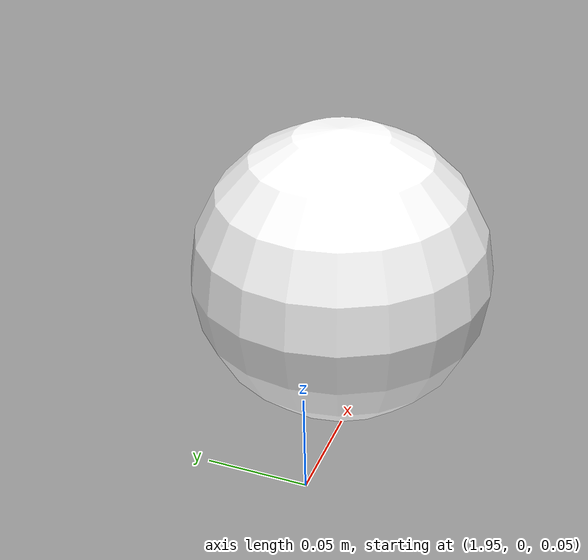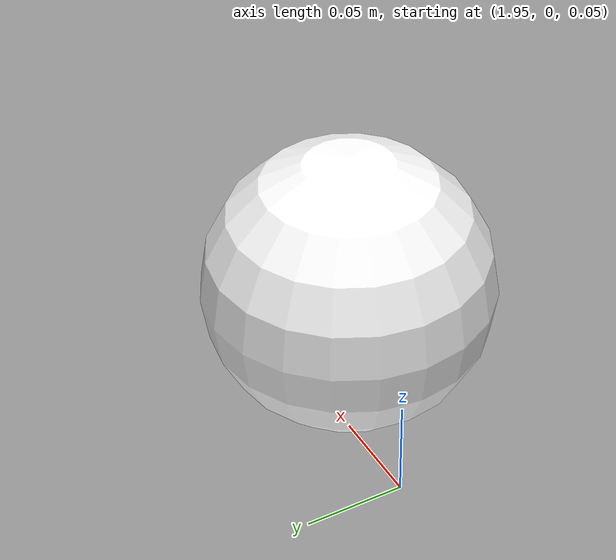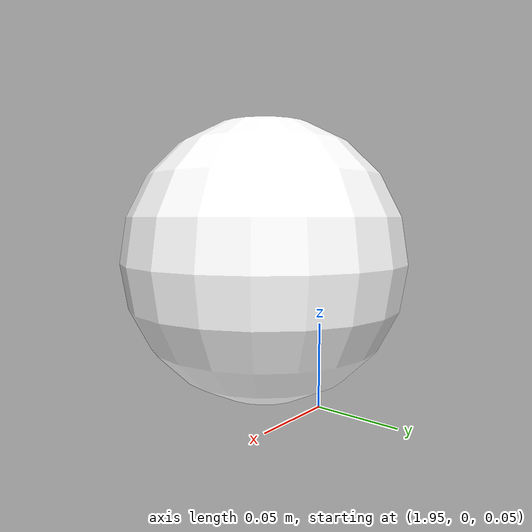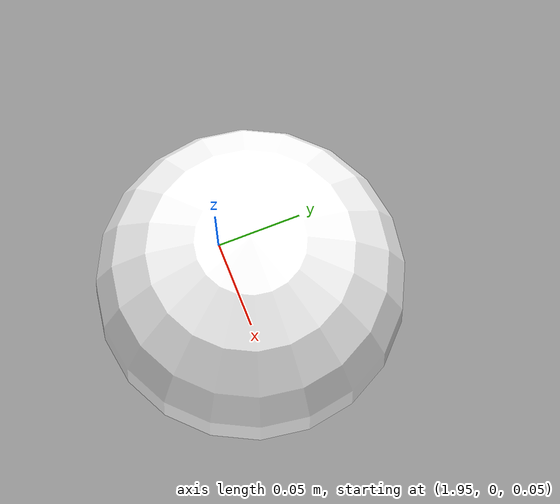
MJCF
<mujoco model="ball">
  <compiler angle="radian"/>

  <worldbody>
    <body name="ball"  pos="2 0 0.14">
      <freejoint name="ball" />
      <site name="ball" />
      <inertial pos="0 0 0" mass="0.3" diaginertia="0.00128 0.00128 0.00128"/>
      <geom size="0.07" rgba="1 1 1 1"/>
    </body>
  </worldbody>
</mujoco>
